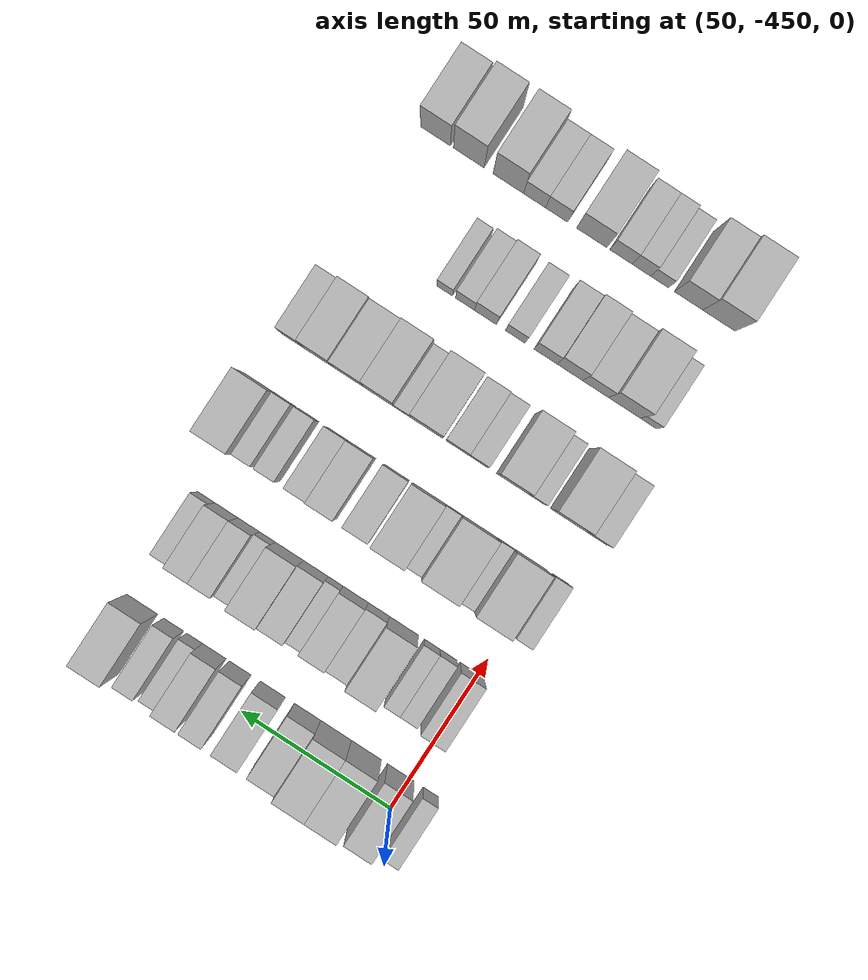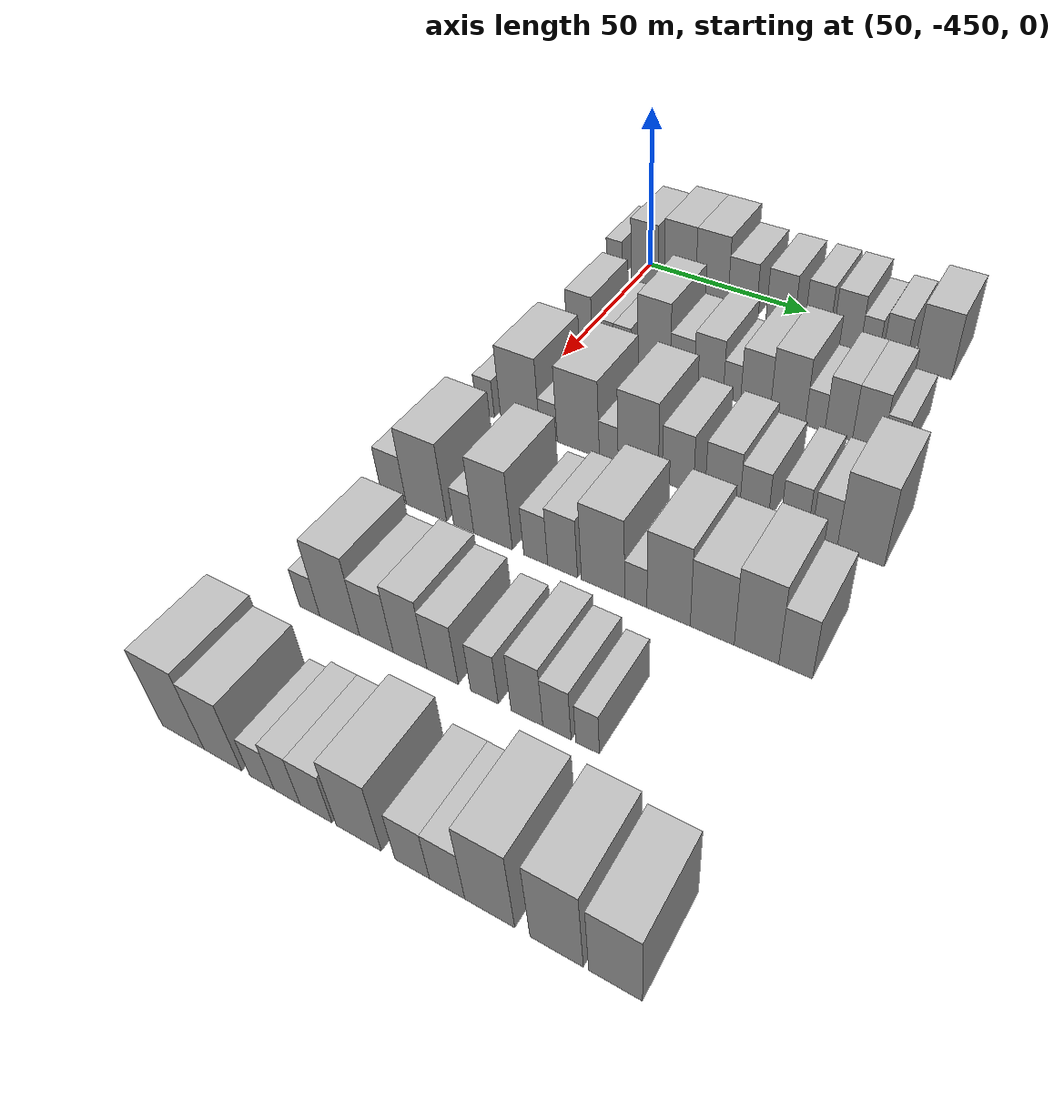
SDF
<sdf version="1.6">
 <world name="default">
  <model name="building_14">
   <static>1</static>
   <pose>50.0000 -456.8778 0 0.000000 0.000000 0.000000</pose>
   <link name="link">
    <pose>0 0 6.00 0 0 0</pose>
    <collision name="collision"><geometry><box><size>20.0000 5.1750 12.0000</size></box></geometry></collision>
    <visual name="visual">
     <cast_shadows>0</cast_shadows>
     <geometry><box><size>20.0000 5.1750 12.0000</size></box></geometry>
     <material>
      <script>
       <uri>model://HANNAS_wall/materials/scripts</uri>
       <uri>model://HANNAS_wall/materials/textures</uri>
       <name>vrc/HANNAS_wall</name>
      </script>
     </material>
    </visual>
   </link>
  </model>
  <model name="building_15">
   <static>1</static>
   <pose>50.0000 -446.8325 0 0.000000 0.000000 0.000000</pose>
   <link name="link">
    <pose>0 0 10.50 0 0 0</pose>
    <collision name="collision"><geometry><box><size>20.0000 8.9155 21.0000</size></box></geometry></collision>
    <visual name="visual">
     <cast_shadows>0</cast_shadows>
     <geometry><box><size>20.0000 8.9155 21.0000</size></box></geometry>
     <material>
      <script>
       <uri>model://HANNAS_wall/materials/scripts</uri>
       <uri>model://HANNAS_wall/materials/textures</uri>
       <name>vrc/HANNAS_wall</name>
      </script>
     </material>
    </visual>
   </link>
  </model>
  <model name="building_16">
   <static>1</static>
   <pose>50.0000 -435.3400 0 0.000000 0.000000 0.000000</pose>
   <link name="link">
    <pose>0 0 12.00 0 0 0</pose>
    <collision name="collision"><geometry><box><size>20.0000 10.0695 24.0000</size></box></geometry></collision>
    <visual name="visual">
     <cast_shadows>0</cast_shadows>
     <geometry><box><size>20.0000 10.0695 24.0000</size></box></geometry>
     <material>
      <script>
       <uri>model://HANNAS_wall/materials/scripts</uri>
       <uri>model://HANNAS_wall/materials/textures</uri>
       <name>vrc/HANNAS_wall</name>
      </script>
     </material>
    </visual>
   </link>
  </model>
  <model name="building_17">
   <static>1</static>
   <pose>50.0000 -425.1786 0 0.000000 0.000000 0.000000</pose>
   <link name="link">
    <pose>0 0 12.00 0 0 0</pose>
    <collision name="collision"><geometry><box><size>20.0000 10.2533 24.0000</size></box></geometry></collision>
    <visual name="visual">
     <cast_shadows>0</cast_shadows>
     <geometry><box><size>20.0000 10.2533 24.0000</size></box></geometry>
     <material>
      <script>
       <uri>model://HANNAS_wall/materials/scripts</uri>
       <uri>model://HANNAS_wall/materials/textures</uri>
       <name>vrc/HANNAS_wall</name>
      </script>
     </material>
    </visual>
   </link>
  </model>
  <model name="building_18">
   <static>1</static>
   <pose>50.0000 -415.6454 0 0.000000 0.000000 0.000000</pose>
   <link name="link">
    <pose>0 0 9.00 0 0 0</pose>
    <collision name="collision"><geometry><box><size>20.0000 8.8131 18.0000</size></box></geometry></collision>
    <visual name="visual">
     <cast_shadows>0</cast_shadows>
     <geometry><box><size>20.0000 8.8131 18.0000</size></box></geometry>
     <material>
      <script>
       <uri>model://HANNAS_wall/materials/scripts</uri>
       <uri>model://HANNAS_wall/materials/textures</uri>
       <name>vrc/HANNAS_wall</name>
      </script>
     </material>
    </visual>
   </link>
  </model>
  <model name="building_19">
   <static>1</static>
   <pose>50.0000 -404.0162 0 0.000000 0.000000 0.000000</pose>
   <link name="link">
    <pose>0 0 9.00 0 0 0</pose>
    <collision name="collision"><geometry><box><size>20.0000 8.4453 18.0000</size></box></geometry></collision>
    <visual name="visual">
     <cast_shadows>0</cast_shadows>
     <geometry><box><size>20.0000 8.4453 18.0000</size></box></geometry>
     <material>
      <script>
       <uri>model://HANNAS_wall/materials/scripts</uri>
       <uri>model://HANNAS_wall/materials/textures</uri>
       <name>vrc/HANNAS_wall</name>
      </script>
     </material>
    </visual>
   </link>
  </model>
  <model name="building_20">
   <static>1</static>
   <pose>50.0000 -393.1114 0 0.000000 0.000000 0.000000</pose>
   <link name="link">
    <pose>0 0 9.00 0 0 0</pose>
    <collision name="collision"><geometry><box><size>20.0000 7.3643 18.0000</size></box></geometry></collision>
    <visual name="visual">
     <cast_shadows>0</cast_shadows>
     <geometry><box><size>20.0000 7.3643 18.0000</size></box></geometry>
     <material>
      <script>
       <uri>model://HANNAS_wall/materials/scripts</uri>
       <uri>model://HANNAS_wall/materials/textures</uri>
       <name>vrc/HANNAS_wall</name>
      </script>
     </material>
    </visual>
   </link>
  </model>
  <model name="building_21">
   <static>1</static>
   <pose>50.0000 -384.4585 0 0.000000 0.000000 0.000000</pose>
   <link name="link">
    <pose>0 0 9.00 0 0 0</pose>
    <collision name="collision"><geometry><box><size>20.0000 7.9415 18.0000</size></box></geometry></collision>
    <visual name="visual">
     <cast_shadows>0</cast_shadows>
     <geometry><box><size>20.0000 7.9415 18.0000</size></box></geometry>
     <material>
      <script>
       <uri>model://HANNAS_wall/materials/scripts</uri>
       <uri>model://HANNAS_wall/materials/textures</uri>
       <name>vrc/HANNAS_wall</name>
      </script>
     </material>
    </visual>
   </link>
  </model>
  <model name="building_22">
   <static>1</static>
   <pose>50.0000 -377.8340 0 0.000000 0.000000 0.000000</pose>
   <link name="link">
    <pose>0 0 6.00 0 0 0</pose>
    <collision name="collision"><geometry><box><size>20.0000 5.3076 12.0000</size></box></geometry></collision>
    <visual name="visual">
     <cast_shadows>0</cast_shadows>
     <geometry><box><size>20.0000 5.3076 12.0000</size></box></geometry>
     <material>
      <script>
       <uri>model://HANNAS_wall/materials/scripts</uri>
       <uri>model://HANNAS_wall/materials/textures</uri>
       <name>vrc/HANNAS_wall</name>
      </script>
     </material>
    </visual>
   </link>
  </model>
  <model name="building_23">
   <static>1</static>
   <pose>50.0000 -370.8288 0 0.000000 0.000000 0.000000</pose>
   <link name="link">
    <pose>0 0 7.50 0 0 0</pose>
    <collision name="collision"><geometry><box><size>20.0000 6.7027 15.0000</size></box></geometry></collision>
    <visual name="visual">
     <cast_shadows>0</cast_shadows>
     <geometry><box><size>20.0000 6.7027 15.0000</size></box></geometry>
     <material>
      <script>
       <uri>model://HANNAS_wall/materials/scripts</uri>
       <uri>model://HANNAS_wall/materials/textures</uri>
       <name>vrc/HANNAS_wall</name>
      </script>
     </material>
    </visual>
   </link>
  </model>
  <model name="building_24">
   <static>1</static>
   <pose>50.0000 -360.2942 0 0.000000 0.000000 0.000000</pose>
   <link name="link">
    <pose>0 0 10.50 0 0 0</pose>
    <collision name="collision"><geometry><box><size>20.0000 10.3666 21.0000</size></box></geometry></collision>
    <visual name="visual">
     <cast_shadows>0</cast_shadows>
     <geometry><box><size>20.0000 10.3666 21.0000</size></box></geometry>
     <material>
      <script>
       <uri>model://HANNAS_wall/materials/scripts</uri>
       <uri>model://HANNAS_wall/materials/textures</uri>
       <name>vrc/HANNAS_wall</name>
      </script>
     </material>
    </visual>
   </link>
  </model>
  <model name="building_139">
   <static>1</static>
   <pose>85.0000 -447.8686 0 0.000000 0.000000 0.000000</pose>
   <link name="link">
    <pose>0 0 9.00 0 0 0</pose>
    <collision name="collision"><geometry><box><size>20.0000 7.9564 18.0000</size></box></geometry></collision>
    <visual name="visual">
     <cast_shadows>0</cast_shadows>
     <geometry><box><size>20.0000 7.9564 18.0000</size></box></geometry>
     <material>
      <script>
       <uri>model://HANNAS_wall/materials/scripts</uri>
       <uri>model://HANNAS_wall/materials/textures</uri>
       <name>vrc/HANNAS_wall</name>
      </script>
     </material>
    </visual>
   </link>
  </model>
  <model name="building_140">
   <static>1</static>
   <pose>85.0000 -440.0648 0 0.000000 0.000000 0.000000</pose>
   <link name="link">
    <pose>0 0 6.00 0 0 0</pose>
    <collision name="collision"><geometry><box><size>20.0000 5.6511 12.0000</size></box></geometry></collision>
    <visual name="visual">
     <cast_shadows>0</cast_shadows>
     <geometry><box><size>20.0000 5.6511 12.0000</size></box></geometry>
     <material>
      <script>
       <uri>model://HANNAS_wall/materials/scripts</uri>
       <uri>model://HANNAS_wall/materials/textures</uri>
       <name>vrc/HANNAS_wall</name>
      </script>
     </material>
    </visual>
   </link>
  </model>
  <model name="building_141">
   <static>1</static>
   <pose>85.0000 -434.6048 0 0.000000 0.000000 0.000000</pose>
   <link name="link">
    <pose>0 0 6.00 0 0 0</pose>
    <collision name="collision"><geometry><box><size>20.0000 5.2687 12.0000</size></box></geometry></collision>
    <visual name="visual">
     <cast_shadows>0</cast_shadows>
     <geometry><box><size>20.0000 5.2687 12.0000</size></box></geometry>
     <material>
      <script>
       <uri>model://HANNAS_wall/materials/scripts</uri>
       <uri>model://HANNAS_wall/materials/textures</uri>
       <name>vrc/HANNAS_wall</name>
      </script>
     </material>
    </visual>
   </link>
  </model>
  <model name="building_142">
   <static>1</static>
   <pose>85.0000 -425.1019 0 0.000000 0.000000 0.000000</pose>
   <link name="link">
    <pose>0 0 12.00 0 0 0</pose>
    <collision name="collision"><geometry><box><size>20.0000 9.7371 24.0000</size></box></geometry></collision>
    <visual name="visual">
     <cast_shadows>0</cast_shadows>
     <geometry><box><size>20.0000 9.7371 24.0000</size></box></geometry>
     <material>
      <script>
       <uri>model://HANNAS_wall/materials/scripts</uri>
       <uri>model://HANNAS_wall/materials/textures</uri>
       <name>vrc/HANNAS_wall</name>
      </script>
     </material>
    </visual>
   </link>
  </model>
  <model name="building_143">
   <static>1</static>
   <pose>85.0000 -416.7316 0 0.000000 0.000000 0.000000</pose>
   <link name="link">
    <pose>0 0 7.50 0 0 0</pose>
    <collision name="collision"><geometry><box><size>20.0000 7.0035 15.0000</size></box></geometry></collision>
    <visual name="visual">
     <cast_shadows>0</cast_shadows>
     <geometry><box><size>20.0000 7.0035 15.0000</size></box></geometry>
     <material>
      <script>
       <uri>model://HANNAS_wall/materials/scripts</uri>
       <uri>model://HANNAS_wall/materials/textures</uri>
       <name>vrc/HANNAS_wall</name>
      </script>
     </material>
    </visual>
   </link>
  </model>
  <model name="building_144">
   <static>1</static>
   <pose>85.0000 -409.0271 0 0.000000 0.000000 0.000000</pose>
   <link name="link">
    <pose>0 0 9.00 0 0 0</pose>
    <collision name="collision"><geometry><box><size>20.0000 8.4054 18.0000</size></box></geometry></collision>
    <visual name="visual">
     <cast_shadows>0</cast_shadows>
     <geometry><box><size>20.0000 8.4054 18.0000</size></box></geometry>
     <material>
      <script>
       <uri>model://HANNAS_wall/materials/scripts</uri>
       <uri>model://HANNAS_wall/materials/textures</uri>
       <name>vrc/HANNAS_wall</name>
      </script>
     </material>
    </visual>
   </link>
  </model>
  <model name="building_145">
   <static>1</static>
   <pose>85.0000 -402.3809 0 0.000000 0.000000 0.000000</pose>
   <link name="link">
    <pose>0 0 6.00 0 0 0</pose>
    <collision name="collision"><geometry><box><size>20.0000 4.8871 12.0000</size></box></geometry></collision>
    <visual name="visual">
     <cast_shadows>0</cast_shadows>
     <geometry><box><size>20.0000 4.8871 12.0000</size></box></geometry>
     <material>
      <script>
       <uri>model://HANNAS_wall/materials/scripts</uri>
       <uri>model://HANNAS_wall/materials/textures</uri>
       <name>vrc/HANNAS_wall</name>
      </script>
     </material>
    </visual>
   </link>
  </model>
  <model name="building_146">
   <static>1</static>
   <pose>85.0000 -395.7852 0 0.000000 0.000000 0.000000</pose>
   <link name="link">
    <pose>0 0 9.00 0 0 0</pose>
    <collision name="collision"><geometry><box><size>20.0000 8.3042 18.0000</size></box></geometry></collision>
    <visual name="visual">
     <cast_shadows>0</cast_shadows>
     <geometry><box><size>20.0000 8.3042 18.0000</size></box></geometry>
     <material>
      <script>
       <uri>model://HANNAS_wall/materials/scripts</uri>
       <uri>model://HANNAS_wall/materials/textures</uri>
       <name>vrc/HANNAS_wall</name>
      </script>
     </material>
    </visual>
   </link>
  </model>
  <model name="building_147">
   <static>1</static>
   <pose>85.0000 -386.8516 0 0.000000 0.000000 0.000000</pose>
   <link name="link">
    <pose>0 0 10.50 0 0 0</pose>
    <collision name="collision"><geometry><box><size>20.0000 9.5630 21.0000</size></box></geometry></collision>
    <visual name="visual">
     <cast_shadows>0</cast_shadows>
     <geometry><box><size>20.0000 9.5630 21.0000</size></box></geometry>
     <material>
      <script>
       <uri>model://HANNAS_wall/materials/scripts</uri>
       <uri>model://HANNAS_wall/materials/textures</uri>
       <name>vrc/HANNAS_wall</name>
      </script>
     </material>
    </visual>
   </link>
  </model>
  <model name="building_148">
   <static>1</static>
   <pose>85.0000 -379.4644 0 0.000000 0.000000 0.000000</pose>
   <link name="link">
    <pose>0 0 6.00 0 0 0</pose>
    <collision name="collision"><geometry><box><size>20.0000 5.2113 12.0000</size></box></geometry></collision>
    <visual name="visual">
     <cast_shadows>0</cast_shadows>
     <geometry><box><size>20.0000 5.2113 12.0000</size></box></geometry>
     <material>
      <script>
       <uri>model://HANNAS_wall/materials/scripts</uri>
       <uri>model://HANNAS_wall/materials/textures</uri>
       <name>vrc/HANNAS_wall</name>
      </script>
     </material>
    </visual>
   </link>
  </model>
  <model name="building_149">
   <static>1</static>
   <pose>85.0000 -373.2463 0 0.000000 0.000000 0.000000</pose>
   <link name="link">
    <pose>0 0 9.00 0 0 0</pose>
    <collision name="collision"><geometry><box><size>20.0000 7.2249 18.0000</size></box></geometry></collision>
    <visual name="visual">
     <cast_shadows>0</cast_shadows>
     <geometry><box><size>20.0000 7.2249 18.0000</size></box></geometry>
     <material>
      <script>
       <uri>model://HANNAS_wall/materials/scripts</uri>
       <uri>model://HANNAS_wall/materials/textures</uri>
       <name>vrc/HANNAS_wall</name>
      </script>
     </material>
    </visual>
   </link>
  </model>
  <model name="building_150">
   <static>1</static>
   <pose>85.0000 -365.7416 0 0.000000 0.000000 0.000000</pose>
   <link name="link">
    <pose>0 0 9.00 0 0 0</pose>
    <collision name="collision"><geometry><box><size>20.0000 7.7844 18.0000</size></box></geometry></collision>
    <visual name="visual">
     <cast_shadows>0</cast_shadows>
     <geometry><box><size>20.0000 7.7844 18.0000</size></box></geometry>
     <material>
      <script>
       <uri>model://HANNAS_wall/materials/scripts</uri>
       <uri>model://HANNAS_wall/materials/textures</uri>
       <name>vrc/HANNAS_wall</name>
      </script>
     </material>
    </visual>
   </link>
  </model>
  <model name="building_151">
   <static>1</static>
   <pose>85.0000 -358.9787 0 0.000000 0.000000 0.000000</pose>
   <link name="link">
    <pose>0 0 6.00 0 0 0</pose>
    <collision name="collision"><geometry><box><size>20.0000 5.7415 12.0000</size></box></geometry></collision>
    <visual name="visual">
     <cast_shadows>0</cast_shadows>
     <geometry><box><size>20.0000 5.7415 12.0000</size></box></geometry>
     <material>
      <script>
       <uri>model://HANNAS_wall/materials/scripts</uri>
       <uri>model://HANNAS_wall/materials/textures</uri>
       <name>vrc/HANNAS_wall</name>
      </script>
     </material>
    </visual>
   </link>
  </model>
  <model name="building_268">
   <static>1</static>
   <pose>120.0000 -454.7729 0 0.000000 0.000000 0.000000</pose>
   <link name="link">
    <pose>0 0 6.00 0 0 0</pose>
    <collision name="collision"><geometry><box><size>20.0000 5.4410 12.0000</size></box></geometry></collision>
    <visual name="visual">
     <cast_shadows>0</cast_shadows>
     <geometry><box><size>20.0000 5.4410 12.0000</size></box></geometry>
     <material>
      <script>
       <uri>model://HANNAS_wall/materials/scripts</uri>
       <uri>model://HANNAS_wall/materials/textures</uri>
       <name>vrc/HANNAS_wall</name>
      </script>
     </material>
    </visual>
   </link>
  </model>
  <model name="building_269">
   <static>1</static>
   <pose>120.0000 -444.2972 0 0.000000 0.000000 0.000000</pose>
   <link name="link">
    <pose>0 0 12.00 0 0 0</pose>
    <collision name="collision"><geometry><box><size>20.0000 11.5103 24.0000</size></box></geometry></collision>
    <visual name="visual">
     <cast_shadows>0</cast_shadows>
     <geometry><box><size>20.0000 11.5103 24.0000</size></box></geometry>
     <material>
      <script>
       <uri>model://HANNAS_wall/materials/scripts</uri>
       <uri>model://HANNAS_wall/materials/textures</uri>
       <name>vrc/HANNAS_wall</name>
      </script>
     </material>
    </visual>
   </link>
  </model>
  <model name="building_270">
   <static>1</static>
   <pose>120.0000 -435.9874 0 0.000000 0.000000 0.000000</pose>
   <link name="link">
    <pose>0 0 6.00 0 0 0</pose>
    <collision name="collision"><geometry><box><size>20.0000 5.1093 12.0000</size></box></geometry></collision>
    <visual name="visual">
     <cast_shadows>0</cast_shadows>
     <geometry><box><size>20.0000 5.1093 12.0000</size></box></geometry>
     <material>
      <script>
       <uri>model://HANNAS_wall/materials/scripts</uri>
       <uri>model://HANNAS_wall/materials/textures</uri>
       <name>vrc/HANNAS_wall</name>
      </script>
     </material>
    </visual>
   </link>
  </model>
  <model name="building_271">
   <static>1</static>
   <pose>120.0000 -427.4332 0 0.000000 0.000000 0.000000</pose>
   <link name="link">
    <pose>0 0 12.00 0 0 0</pose>
    <collision name="collision"><geometry><box><size>20.0000 11.9992 24.0000</size></box></geometry></collision>
    <visual name="visual">
     <cast_shadows>0</cast_shadows>
     <geometry><box><size>20.0000 11.9992 24.0000</size></box></geometry>
     <material>
      <script>
       <uri>model://HANNAS_wall/materials/scripts</uri>
       <uri>model://HANNAS_wall/materials/textures</uri>
       <name>vrc/HANNAS_wall</name>
      </script>
     </material>
    </visual>
   </link>
  </model>
  <model name="building_272">
   <static>1</static>
   <pose>120.0000 -418.8136 0 0.000000 0.000000 0.000000</pose>
   <link name="link">
    <pose>0 0 6.00 0 0 0</pose>
    <collision name="collision"><geometry><box><size>20.0000 5.2399 12.0000</size></box></geometry></collision>
    <visual name="visual">
     <cast_shadows>0</cast_shadows>
     <geometry><box><size>20.0000 5.2399 12.0000</size></box></geometry>
     <material>
      <script>
       <uri>model://HANNAS_wall/materials/scripts</uri>
       <uri>model://HANNAS_wall/materials/textures</uri>
       <name>vrc/HANNAS_wall</name>
      </script>
     </material>
    </visual>
   </link>
  </model>
  <model name="building_273">
   <static>1</static>
   <pose>120.0000 -410.7198 0 0.000000 0.000000 0.000000</pose>
   <link name="link">
    <pose>0 0 12.00 0 0 0</pose>
    <collision name="collision"><geometry><box><size>20.0000 10.9477 24.0000</size></box></geometry></collision>
    <visual name="visual">
     <cast_shadows>0</cast_shadows>
     <geometry><box><size>20.0000 10.9477 24.0000</size></box></geometry>
     <material>
      <script>
       <uri>model://HANNAS_wall/materials/scripts</uri>
       <uri>model://HANNAS_wall/materials/textures</uri>
       <name>vrc/HANNAS_wall</name>
      </script>
     </material>
    </visual>
   </link>
  </model>
  <model name="building_274">
   <static>1</static>
   <pose>120.0000 -400.1110 0 0.000000 0.000000 0.000000</pose>
   <link name="link">
    <pose>0 0 9.00 0 0 0</pose>
    <collision name="collision"><geometry><box><size>20.0000 8.2701 18.0000</size></box></geometry></collision>
    <visual name="visual">
     <cast_shadows>0</cast_shadows>
     <geometry><box><size>20.0000 8.2701 18.0000</size></box></geometry>
     <material>
      <script>
       <uri>model://HANNAS_wall/materials/scripts</uri>
       <uri>model://HANNAS_wall/materials/textures</uri>
       <name>vrc/HANNAS_wall</name>
      </script>
     </material>
    </visual>
   </link>
  </model>
  <model name="building_275">
   <static>1</static>
   <pose>120.0000 -388.5490 0 0.000000 0.000000 0.000000</pose>
   <link name="link">
    <pose>0 0 9.00 0 0 0</pose>
    <collision name="collision"><geometry><box><size>20.0000 8.8538 18.0000</size></box></geometry></collision>
    <visual name="visual">
     <cast_shadows>0</cast_shadows>
     <geometry><box><size>20.0000 8.8538 18.0000</size></box></geometry>
     <material>
      <script>
       <uri>model://HANNAS_wall/materials/scripts</uri>
       <uri>model://HANNAS_wall/materials/textures</uri>
       <name>vrc/HANNAS_wall</name>
      </script>
     </material>
    </visual>
   </link>
  </model>
  <model name="building_276">
   <static>1</static>
   <pose>120.0000 -380.5211 0 0.000000 0.000000 0.000000</pose>
   <link name="link">
    <pose>0 0 7.50 0 0 0</pose>
    <collision name="collision"><geometry><box><size>20.0000 7.2019 15.0000</size></box></geometry></collision>
    <visual name="visual">
     <cast_shadows>0</cast_shadows>
     <geometry><box><size>20.0000 7.2019 15.0000</size></box></geometry>
     <material>
      <script>
       <uri>model://HANNAS_wall/materials/scripts</uri>
       <uri>model://HANNAS_wall/materials/textures</uri>
       <name>vrc/HANNAS_wall</name>
      </script>
     </material>
    </visual>
   </link>
  </model>
  <model name="building_277">
   <static>1</static>
   <pose>120.0000 -370.6046 0 0.000000 0.000000 0.000000</pose>
   <link name="link">
    <pose>0 0 7.50 0 0 0</pose>
    <collision name="collision"><geometry><box><size>20.0000 6.6312 15.0000</size></box></geometry></collision>
    <visual name="visual">
     <cast_shadows>0</cast_shadows>
     <geometry><box><size>20.0000 6.6312 15.0000</size></box></geometry>
     <material>
      <script>
       <uri>model://HANNAS_wall/materials/scripts</uri>
       <uri>model://HANNAS_wall/materials/textures</uri>
       <name>vrc/HANNAS_wall</name>
      </script>
     </material>
    </visual>
   </link>
  </model>
  <model name="building_278">
   <static>1</static>
   <pose>120.0000 -363.2275 0 0.000000 0.000000 0.000000</pose>
   <link name="link">
    <pose>0 0 7.50 0 0 0</pose>
    <collision name="collision"><geometry><box><size>20.0000 6.1230 15.0000</size></box></geometry></collision>
    <visual name="visual">
     <cast_shadows>0</cast_shadows>
     <geometry><box><size>20.0000 6.1230 15.0000</size></box></geometry>
     <material>
      <script>
       <uri>model://HANNAS_wall/materials/scripts</uri>
       <uri>model://HANNAS_wall/materials/textures</uri>
       <name>vrc/HANNAS_wall</name>
      </script>
     </material>
    </visual>
   </link>
  </model>
  <model name="building_279">
   <static>1</static>
   <pose>120.0000 -354.6300 0 0.000000 0.000000 0.000000</pose>
   <link name="link">
    <pose>0 0 12.00 0 0 0</pose>
    <collision name="collision"><geometry><box><size>20.0000 11.0719 24.0000</size></box></geometry></collision>
    <visual name="visual">
     <cast_shadows>0</cast_shadows>
     <geometry><box><size>20.0000 11.0719 24.0000</size></box></geometry>
     <material>
      <script>
       <uri>model://HANNAS_wall/materials/scripts</uri>
       <uri>model://HANNAS_wall/materials/textures</uri>
       <name>vrc/HANNAS_wall</name>
      </script>
     </material>
    </visual>
   </link>
  </model>
  <model name="building_381">
   <static>1</static>
   <pose>155.0000 -456.6038 0 0.000000 0.000000 0.000000</pose>
   <link name="link">
    <pose>0 0 7.50 0 0 0</pose>
    <collision name="collision"><geometry><box><size>20.0000 7.3090 15.0000</size></box></geometry></collision>
    <visual name="visual">
     <cast_shadows>0</cast_shadows>
     <geometry><box><size>20.0000 7.3090 15.0000</size></box></geometry>
     <material>
      <script>
       <uri>model://HANNAS_wall/materials/scripts</uri>
       <uri>model://HANNAS_wall/materials/textures</uri>
       <name>vrc/HANNAS_wall</name>
      </script>
     </material>
    </visual>
   </link>
  </model>
  <model name="building_382">
   <static>1</static>
   <pose>155.0000 -447.2479 0 0.000000 0.000000 0.000000</pose>
   <link name="link">
    <pose>0 0 12.00 0 0 0</pose>
    <collision name="collision"><geometry><box><size>20.0000 11.4028 24.0000</size></box></geometry></collision>
    <visual name="visual">
     <cast_shadows>0</cast_shadows>
     <geometry><box><size>20.0000 11.4028 24.0000</size></box></geometry>
     <material>
      <script>
       <uri>model://HANNAS_wall/materials/scripts</uri>
       <uri>model://HANNAS_wall/materials/textures</uri>
       <name>vrc/HANNAS_wall</name>
      </script>
     </material>
    </visual>
   </link>
  </model>
  <model name="building_383">
   <static>1</static>
   <pose>155.0000 -436.7712 0 0.000000 0.000000 0.000000</pose>
   <link name="link">
    <pose>0 0 6.00 0 0 0</pose>
    <collision name="collision"><geometry><box><size>20.0000 5.5506 12.0000</size></box></geometry></collision>
    <visual name="visual">
     <cast_shadows>0</cast_shadows>
     <geometry><box><size>20.0000 5.5506 12.0000</size></box></geometry>
     <material>
      <script>
       <uri>model://HANNAS_wall/materials/scripts</uri>
       <uri>model://HANNAS_wall/materials/textures</uri>
       <name>vrc/HANNAS_wall</name>
      </script>
     </material>
    </visual>
   </link>
  </model>
  <model name="building_384">
   <static>1</static>
   <pose>155.0000 -428.7681 0 0.000000 0.000000 0.000000</pose>
   <link name="link">
    <pose>0 0 12.00 0 0 0</pose>
    <collision name="collision"><geometry><box><size>20.0000 10.4556 24.0000</size></box></geometry></collision>
    <visual name="visual">
     <cast_shadows>0</cast_shadows>
     <geometry><box><size>20.0000 10.4556 24.0000</size></box></geometry>
     <material>
      <script>
       <uri>model://HANNAS_wall/materials/scripts</uri>
       <uri>model://HANNAS_wall/materials/textures</uri>
       <name>vrc/HANNAS_wall</name>
      </script>
     </material>
    </visual>
   </link>
  </model>
  <model name="building_385">
   <static>1</static>
   <pose>155.0000 -417.4006 0 0.000000 0.000000 0.000000</pose>
   <link name="link">
    <pose>0 0 7.50 0 0 0</pose>
    <collision name="collision"><geometry><box><size>20.0000 6.2795 15.0000</size></box></geometry></collision>
    <visual name="visual">
     <cast_shadows>0</cast_shadows>
     <geometry><box><size>20.0000 6.2795 15.0000</size></box></geometry>
     <material>
      <script>
       <uri>model://HANNAS_wall/materials/scripts</uri>
       <uri>model://HANNAS_wall/materials/textures</uri>
       <name>vrc/HANNAS_wall</name>
      </script>
     </material>
    </visual>
   </link>
  </model>
  <model name="building_386">
   <static>1</static>
   <pose>155.0000 -410.4490 0 0.000000 0.000000 0.000000</pose>
   <link name="link">
    <pose>0 0 9.00 0 0 0</pose>
    <collision name="collision"><geometry><box><size>20.0000 7.6235 18.0000</size></box></geometry></collision>
    <visual name="visual">
     <cast_shadows>0</cast_shadows>
     <geometry><box><size>20.0000 7.6235 18.0000</size></box></geometry>
     <material>
      <script>
       <uri>model://HANNAS_wall/materials/scripts</uri>
       <uri>model://HANNAS_wall/materials/textures</uri>
       <name>vrc/HANNAS_wall</name>
      </script>
     </material>
    </visual>
   </link>
  </model>
  <model name="building_387">
   <static>1</static>
   <pose>155.0000 -400.2442 0 0.000000 0.000000 0.000000</pose>
   <link name="link">
    <pose>0 0 12.00 0 0 0</pose>
    <collision name="collision"><geometry><box><size>20.0000 10.7861 24.0000</size></box></geometry></collision>
    <visual name="visual">
     <cast_shadows>0</cast_shadows>
     <geometry><box><size>20.0000 10.7861 24.0000</size></box></geometry>
     <material>
      <script>
       <uri>model://HANNAS_wall/materials/scripts</uri>
       <uri>model://HANNAS_wall/materials/textures</uri>
       <name>vrc/HANNAS_wall</name>
      </script>
     </material>
    </visual>
   </link>
  </model>
  <model name="building_388">
   <static>1</static>
   <pose>155.0000 -392.1743 0 0.000000 0.000000 0.000000</pose>
   <link name="link">
    <pose>0 0 6.00 0 0 0</pose>
    <collision name="collision"><geometry><box><size>20.0000 5.3537 12.0000</size></box></geometry></collision>
    <visual name="visual">
     <cast_shadows>0</cast_shadows>
     <geometry><box><size>20.0000 5.3537 12.0000</size></box></geometry>
     <material>
      <script>
       <uri>model://HANNAS_wall/materials/scripts</uri>
       <uri>model://HANNAS_wall/materials/textures</uri>
       <name>vrc/HANNAS_wall</name>
      </script>
     </material>
    </visual>
   </link>
  </model>
  <model name="building_389">
   <static>1</static>
   <pose>155.0000 -384.3731 0 0.000000 0.000000 0.000000</pose>
   <link name="link">
    <pose>0 0 12.00 0 0 0</pose>
    <collision name="collision"><geometry><box><size>20.0000 10.2487 24.0000</size></box></geometry></collision>
    <visual name="visual">
     <cast_shadows>0</cast_shadows>
     <geometry><box><size>20.0000 10.2487 24.0000</size></box></geometry>
     <material>
      <script>
       <uri>model://HANNAS_wall/materials/scripts</uri>
       <uri>model://HANNAS_wall/materials/textures</uri>
       <name>vrc/HANNAS_wall</name>
      </script>
     </material>
    </visual>
   </link>
  </model>
  <model name="building_390">
   <static>1</static>
   <pose>155.0000 -374.1952 0 0.000000 0.000000 0.000000</pose>
   <link name="link">
    <pose>0 0 10.50 0 0 0</pose>
    <collision name="collision"><geometry><box><size>20.0000 10.1072 21.0000</size></box></geometry></collision>
    <visual name="visual">
     <cast_shadows>0</cast_shadows>
     <geometry><box><size>20.0000 10.1072 21.0000</size></box></geometry>
     <material>
      <script>
       <uri>model://HANNAS_wall/materials/scripts</uri>
       <uri>model://HANNAS_wall/materials/textures</uri>
       <name>vrc/HANNAS_wall</name>
      </script>
     </material>
    </visual>
   </link>
  </model>
  <model name="building_391">
   <static>1</static>
   <pose>155.0000 -364.1889 0 0.000000 0.000000 0.000000</pose>
   <link name="link">
    <pose>0 0 12.00 0 0 0</pose>
    <collision name="collision"><geometry><box><size>20.0000 9.9055 24.0000</size></box></geometry></collision>
    <visual name="visual">
     <cast_shadows>0</cast_shadows>
     <geometry><box><size>20.0000 9.9055 24.0000</size></box></geometry>
     <material>
      <script>
       <uri>model://HANNAS_wall/materials/scripts</uri>
       <uri>model://HANNAS_wall/materials/textures</uri>
       <name>vrc/HANNAS_wall</name>
      </script>
     </material>
    </visual>
   </link>
  </model>
  <model name="building_392">
   <static>1</static>
   <pose>155.0000 -355.5675 0 0.000000 0.000000 0.000000</pose>
   <link name="link">
    <pose>0 0 9.00 0 0 0</pose>
    <collision name="collision"><geometry><box><size>20.0000 7.3375 18.0000</size></box></geometry></collision>
    <visual name="visual">
     <cast_shadows>0</cast_shadows>
     <geometry><box><size>20.0000 7.3375 18.0000</size></box></geometry>
     <material>
      <script>
       <uri>model://HANNAS_wall/materials/scripts</uri>
       <uri>model://HANNAS_wall/materials/textures</uri>
       <name>vrc/HANNAS_wall</name>
      </script>
     </material>
    </visual>
   </link>
  </model>
  <model name="building_509">
   <static>1</static>
   <pose>190.0000 -451.5985 0 0.000000 0.000000 0.000000</pose>
   <link name="link">
    <pose>0 0 6.00 0 0 0</pose>
    <collision name="collision"><geometry><box><size>20.0000 5.4758 12.0000</size></box></geometry></collision>
    <visual name="visual">
     <cast_shadows>0</cast_shadows>
     <geometry><box><size>20.0000 5.4758 12.0000</size></box></geometry>
     <material>
      <script>
       <uri>model://HANNAS_wall/materials/scripts</uri>
       <uri>model://HANNAS_wall/materials/textures</uri>
       <name>vrc/HANNAS_wall</name>
      </script>
     </material>
    </visual>
   </link>
  </model>
  <model name="building_510">
   <static>1</static>
   <pose>190.0000 -443.5513 0 0.000000 0.000000 0.000000</pose>
   <link name="link">
    <pose>0 0 12.00 0 0 0</pose>
    <collision name="collision"><geometry><box><size>20.0000 10.6186 24.0000</size></box></geometry></collision>
    <visual name="visual">
     <cast_shadows>0</cast_shadows>
     <geometry><box><size>20.0000 10.6186 24.0000</size></box></geometry>
     <material>
      <script>
       <uri>model://HANNAS_wall/materials/scripts</uri>
       <uri>model://HANNAS_wall/materials/textures</uri>
       <name>vrc/HANNAS_wall</name>
      </script>
     </material>
    </visual>
   </link>
  </model>
  <model name="building_511">
   <static>1</static>
   <pose>190.0000 -433.8772 0 0.000000 0.000000 0.000000</pose>
   <link name="link">
    <pose>0 0 9.00 0 0 0</pose>
    <collision name="collision"><geometry><box><size>20.0000 8.7296 18.0000</size></box></geometry></collision>
    <visual name="visual">
     <cast_shadows>0</cast_shadows>
     <geometry><box><size>20.0000 8.7296 18.0000</size></box></geometry>
     <material>
      <script>
       <uri>model://HANNAS_wall/materials/scripts</uri>
       <uri>model://HANNAS_wall/materials/textures</uri>
       <name>vrc/HANNAS_wall</name>
      </script>
     </material>
    </visual>
   </link>
  </model>
  <model name="building_512">
   <static>1</static>
   <pose>190.0000 -425.2529 0 0.000000 0.000000 0.000000</pose>
   <link name="link">
    <pose>0 0 10.50 0 0 0</pose>
    <collision name="collision"><geometry><box><size>20.0000 8.5191 21.0000</size></box></geometry></collision>
    <visual name="visual">
     <cast_shadows>0</cast_shadows>
     <geometry><box><size>20.0000 8.5191 21.0000</size></box></geometry>
     <material>
      <script>
       <uri>model://HANNAS_wall/materials/scripts</uri>
       <uri>model://HANNAS_wall/materials/textures</uri>
       <name>vrc/HANNAS_wall</name>
      </script>
     </material>
    </visual>
   </link>
  </model>
  <model name="building_513">
   <static>1</static>
   <pose>190.0000 -417.1629 0 0.000000 0.000000 0.000000</pose>
   <link name="link">
    <pose>0 0 9.00 0 0 0</pose>
    <collision name="collision"><geometry><box><size>20.0000 7.6608 18.0000</size></box></geometry></collision>
    <visual name="visual">
     <cast_shadows>0</cast_shadows>
     <geometry><box><size>20.0000 7.6608 18.0000</size></box></geometry>
     <material>
      <script>
       <uri>model://HANNAS_wall/materials/scripts</uri>
       <uri>model://HANNAS_wall/materials/textures</uri>
       <name>vrc/HANNAS_wall</name>
      </script>
     </material>
    </visual>
   </link>
  </model>
  <model name="building_514">
   <static>1</static>
   <pose>190.0000 -407.0384 0 0.000000 0.000000 0.000000</pose>
   <link name="link">
    <pose>0 0 7.50 0 0 0</pose>
    <collision name="collision"><geometry><box><size>20.0000 6.5882 15.0000</size></box></geometry></collision>
    <visual name="visual">
     <cast_shadows>0</cast_shadows>
     <geometry><box><size>20.0000 6.5882 15.0000</size></box></geometry>
     <material>
      <script>
       <uri>model://HANNAS_wall/materials/scripts</uri>
       <uri>model://HANNAS_wall/materials/textures</uri>
       <name>vrc/HANNAS_wall</name>
      </script>
     </material>
    </visual>
   </link>
  </model>
  <model name="building_515">
   <static>1</static>
   <pose>190.0000 -397.0925 0 0.000000 0.000000 0.000000</pose>
   <link name="link">
    <pose>0 0 9.00 0 0 0</pose>
    <collision name="collision"><geometry><box><size>20.0000 7.3037 18.0000</size></box></geometry></collision>
    <visual name="visual">
     <cast_shadows>0</cast_shadows>
     <geometry><box><size>20.0000 7.3037 18.0000</size></box></geometry>
     <material>
      <script>
       <uri>model://HANNAS_wall/materials/scripts</uri>
       <uri>model://HANNAS_wall/materials/textures</uri>
       <name>vrc/HANNAS_wall</name>
      </script>
     </material>
    </visual>
   </link>
  </model>
  <model name="building_516">
   <static>1</static>
   <pose>190.0000 -390.2546 0 0.000000 0.000000 0.000000</pose>
   <link name="link">
    <pose>0 0 7.50 0 0 0</pose>
    <collision name="collision"><geometry><box><size>20.0000 6.3720 15.0000</size></box></geometry></collision>
    <visual name="visual">
     <cast_shadows>0</cast_shadows>
     <geometry><box><size>20.0000 6.3720 15.0000</size></box></geometry>
     <material>
      <script>
       <uri>model://HANNAS_wall/materials/scripts</uri>
       <uri>model://HANNAS_wall/materials/textures</uri>
       <name>vrc/HANNAS_wall</name>
      </script>
     </material>
    </visual>
   </link>
  </model>
  <model name="building_517">
   <static>1</static>
   <pose>190.0000 -383.4616 0 0.000000 0.000000 0.000000</pose>
   <link name="link">
    <pose>0 0 6.00 0 0 0</pose>
    <collision name="collision"><geometry><box><size>20.0000 5.2141 12.0000</size></box></geometry></collision>
    <visual name="visual">
     <cast_shadows>0</cast_shadows>
     <geometry><box><size>20.0000 5.2141 12.0000</size></box></geometry>
     <material>
      <script>
       <uri>model://HANNAS_wall/materials/scripts</uri>
       <uri>model://HANNAS_wall/materials/textures</uri>
       <name>vrc/HANNAS_wall</name>
      </script>
     </material>
    </visual>
   </link>
  </model>
  <model name="building_632">
   <static>1</static>
   <pose>225.0000 -452.4789 0 0.000000 0.000000 0.000000</pose>
   <link name="link">
    <pose>0 0 12.00 0 0 0</pose>
    <collision name="collision"><geometry><box><size>20.0000 10.8693 24.0000</size></box></geometry></collision>
    <visual name="visual">
     <cast_shadows>0</cast_shadows>
     <geometry><box><size>20.0000 10.8693 24.0000</size></box></geometry>
     <material>
      <script>
       <uri>model://HANNAS_wall/materials/scripts</uri>
       <uri>model://HANNAS_wall/materials/textures</uri>
       <name>vrc/HANNAS_wall</name>
      </script>
     </material>
    </visual>
   </link>
  </model>
  <model name="building_633">
   <static>1</static>
   <pose>225.0000 -442.3133 0 0.000000 0.000000 0.000000</pose>
   <link name="link">
    <pose>0 0 10.50 0 0 0</pose>
    <collision name="collision"><geometry><box><size>20.0000 9.4619 21.0000</size></box></geometry></collision>
    <visual name="visual">
     <cast_shadows>0</cast_shadows>
     <geometry><box><size>20.0000 9.4619 21.0000</size></box></geometry>
     <material>
      <script>
       <uri>model://HANNAS_wall/materials/scripts</uri>
       <uri>model://HANNAS_wall/materials/textures</uri>
       <name>vrc/HANNAS_wall</name>
      </script>
     </material>
    </visual>
   </link>
  </model>
  <model name="building_634">
   <static>1</static>
   <pose>225.0000 -432.5957 0 0.000000 0.000000 0.000000</pose>
   <link name="link">
    <pose>0 0 6.00 0 0 0</pose>
    <collision name="collision"><geometry><box><size>20.0000 5.9734 12.0000</size></box></geometry></collision>
    <visual name="visual">
     <cast_shadows>0</cast_shadows>
     <geometry><box><size>20.0000 5.9734 12.0000</size></box></geometry>
     <material>
      <script>
       <uri>model://HANNAS_wall/materials/scripts</uri>
       <uri>model://HANNAS_wall/materials/textures</uri>
       <name>vrc/HANNAS_wall</name>
      </script>
     </material>
    </visual>
   </link>
  </model>
  <model name="building_635">
   <static>1</static>
   <pose>225.0000 -426.5124 0 0.000000 0.000000 0.000000</pose>
   <link name="link">
    <pose>0 0 7.50 0 0 0</pose>
    <collision name="collision"><geometry><box><size>20.0000 6.1932 15.0000</size></box></geometry></collision>
    <visual name="visual">
     <cast_shadows>0</cast_shadows>
     <geometry><box><size>20.0000 6.1932 15.0000</size></box></geometry>
     <material>
      <script>
       <uri>model://HANNAS_wall/materials/scripts</uri>
       <uri>model://HANNAS_wall/materials/textures</uri>
       <name>vrc/HANNAS_wall</name>
      </script>
     </material>
    </visual>
   </link>
  </model>
  <model name="building_636">
   <static>1</static>
   <pose>225.0000 -419.6916 0 0.000000 0.000000 0.000000</pose>
   <link name="link">
    <pose>0 0 7.50 0 0 0</pose>
    <collision name="collision"><geometry><box><size>20.0000 7.4483 15.0000</size></box></geometry></collision>
    <visual name="visual">
     <cast_shadows>0</cast_shadows>
     <geometry><box><size>20.0000 7.4483 15.0000</size></box></geometry>
     <material>
      <script>
       <uri>model://HANNAS_wall/materials/scripts</uri>
       <uri>model://HANNAS_wall/materials/textures</uri>
       <name>vrc/HANNAS_wall</name>
      </script>
     </material>
    </visual>
   </link>
  </model>
  <model name="building_637">
   <static>1</static>
   <pose>225.0000 -409.9068 0 0.000000 0.000000 0.000000</pose>
   <link name="link">
    <pose>0 0 10.50 0 0 0</pose>
    <collision name="collision"><geometry><box><size>20.0000 10.1214 21.0000</size></box></geometry></collision>
    <visual name="visual">
     <cast_shadows>0</cast_shadows>
     <geometry><box><size>20.0000 10.1214 21.0000</size></box></geometry>
     <material>
      <script>
       <uri>model://HANNAS_wall/materials/scripts</uri>
       <uri>model://HANNAS_wall/materials/textures</uri>
       <name>vrc/HANNAS_wall</name>
      </script>
     </material>
    </visual>
   </link>
  </model>
  <model name="building_638">
   <static>1</static>
   <pose>225.0000 -398.1255 0 0.000000 0.000000 0.000000</pose>
   <link name="link">
    <pose>0 0 7.50 0 0 0</pose>
    <collision name="collision"><geometry><box><size>20.0000 7.4412 15.0000</size></box></geometry></collision>
    <visual name="visual">
     <cast_shadows>0</cast_shadows>
     <geometry><box><size>20.0000 7.4412 15.0000</size></box></geometry>
     <material>
      <script>
       <uri>model://HANNAS_wall/materials/scripts</uri>
       <uri>model://HANNAS_wall/materials/textures</uri>
       <name>vrc/HANNAS_wall</name>
      </script>
     </material>
    </visual>
   </link>
  </model>
  <model name="building_639">
   <static>1</static>
   <pose>225.0000 -390.6998 0 0.000000 0.000000 0.000000</pose>
   <link name="link">
    <pose>0 0 7.50 0 0 0</pose>
    <collision name="collision"><geometry><box><size>20.0000 7.4101 15.0000</size></box></geometry></collision>
    <visual name="visual">
     <cast_shadows>0</cast_shadows>
     <geometry><box><size>20.0000 7.4101 15.0000</size></box></geometry>
     <material>
      <script>
       <uri>model://HANNAS_wall/materials/scripts</uri>
       <uri>model://HANNAS_wall/materials/textures</uri>
       <name>vrc/HANNAS_wall</name>
      </script>
     </material>
    </visual>
   </link>
  </model>
  <model name="building_640">
   <static>1</static>
   <pose>225.0000 -381.9298 0 0.000000 0.000000 0.000000</pose>
   <link name="link">
    <pose>0 0 12.00 0 0 0</pose>
    <collision name="collision"><geometry><box><size>20.0000 10.1299 24.0000</size></box></geometry></collision>
    <visual name="visual">
     <cast_shadows>0</cast_shadows>
     <geometry><box><size>20.0000 10.1299 24.0000</size></box></geometry>
     <material>
      <script>
       <uri>model://HANNAS_wall/materials/scripts</uri>
       <uri>model://HANNAS_wall/materials/textures</uri>
       <name>vrc/HANNAS_wall</name>
      </script>
     </material>
    </visual>
   </link>
  </model>
  <model name="building_641">
   <static>1</static>
   <pose>225.0000 -368.7225 0 0.000000 0.000000 0.000000</pose>
   <link name="link">
    <pose>0 0 12.00 0 0 0</pose>
    <collision name="collision"><geometry><box><size>20.0000 10.2846 24.0000</size></box></geometry></collision>
    <visual name="visual">
     <cast_shadows>0</cast_shadows>
     <geometry><box><size>20.0000 10.2846 24.0000</size></box></geometry>
     <material>
      <script>
       <uri>model://HANNAS_wall/materials/scripts</uri>
       <uri>model://HANNAS_wall/materials/textures</uri>
       <name>vrc/HANNAS_wall</name>
      </script>
     </material>
    </visual>
   </link>
  </model>
  <model name="building_642">
   <static>1</static>
   <pose>225.0000 -357.6143 0 0.000000 0.000000 0.000000</pose>
   <link name="link">
    <pose>0 0 10.50 0 0 0</pose>
    <collision name="collision"><geometry><box><size>20.0000 9.9320 21.0000</size></box></geometry></collision>
    <visual name="visual">
     <cast_shadows>0</cast_shadows>
     <geometry><box><size>20.0000 9.9320 21.0000</size></box></geometry>
     <material>
      <script>
       <uri>model://HANNAS_wall/materials/scripts</uri>
       <uri>model://HANNAS_wall/materials/textures</uri>
       <name>vrc/HANNAS_wall</name>
      </script>
     </material>
    </visual>
   </link>
  </model>
 </world>
</sdf>
